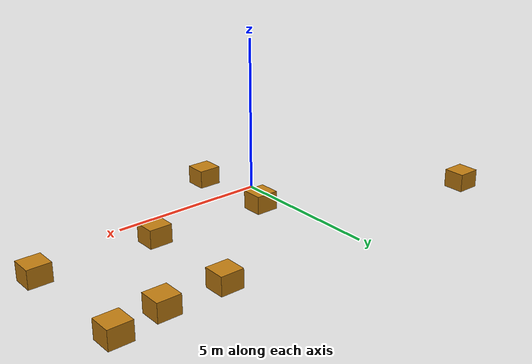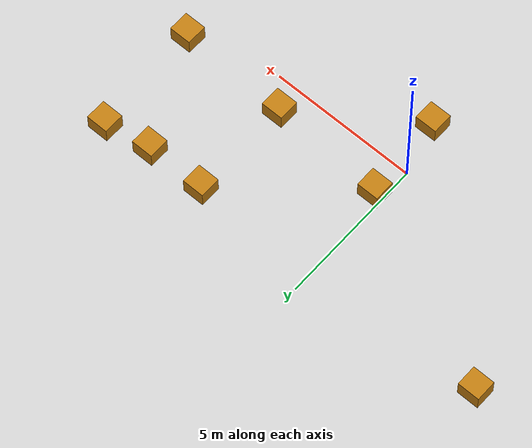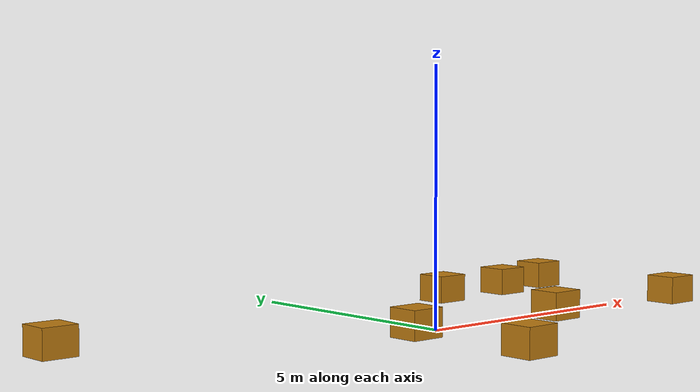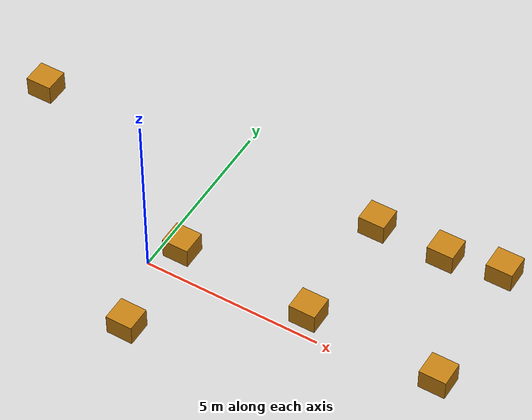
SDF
<?xml version='1.0'?>
<sdf version='1.7'>
  <model name='unit_box'>
    <link name='link_clone'>
      <inertial>
        <mass>710</mass>
        <inertia>
          <ixx>118.333</ixx>
          <ixy>0</ixy>
          <ixz>0</ixz>
          <iyy>118.333</iyy>
          <iyz>0</iyz>
          <izz>118.333</izz>
        </inertia>
        <pose>0 0 0 0 -0 0</pose>
      </inertial>
      <self_collide>0</self_collide>
      <enable_wind>0</enable_wind>
      <kinematic>0</kinematic>
      <pose>0.568983 -1.85759 1.8e-05 -1e-05 -0 0</pose>
      <gravity>1</gravity>
      <visual name='visual'>
        <geometry>
          <box>
            <size>0.75 0.7 0.6</size>
          </box>
        </geometry>
        <material>
          <script>
            <name>Gazebo/Grey</name>
            <uri>file://media/materials/scripts/gazebo.material</uri>
          </script>
          <shader type='vertex'>
            <normal_map>__default__</normal_map>
          </shader>
          <ambient>0.757 0.49 0.067 0.8</ambient>
          <diffuse>0.757 0.49 0.067 1</diffuse>
          <specular>0.01 0.01 0.01 1</specular>
          <emissive>0 0 0 1</emissive>
          <lighting>1</lighting>
        </material>
        <pose>0 0 0 0 -0 0</pose>
        <transparency>0</transparency>
        <cast_shadows>1</cast_shadows>
      </visual>
      <collision name='collision'>
        <laser_retro>0</laser_retro>
        <max_contacts>10</max_contacts>
        <pose>0 0 0 0 -0 0</pose>
        <geometry>
          <box>
            <size>1 1 1</size>
          </box>
        </geometry>
        <surface>
          <friction>
            <ode>
              <mu>1</mu>
              <mu2>1</mu2>
              <fdir1>0 0 0</fdir1>
              <slip1>0</slip1>
              <slip2>0</slip2>
            </ode>
            <torsional>
              <coefficient>1</coefficient>
              <patch_radius>0</patch_radius>
              <surface_radius>0</surface_radius>
              <use_patch_radius>1</use_patch_radius>
              <ode>
                <slip>0</slip>
              </ode>
            </torsional>
          </friction>
          <bounce>
            <restitution_coefficient>0</restitution_coefficient>
            <threshold>1e+06</threshold>
          </bounce>
          <contact>
            <collide_without_contact>0</collide_without_contact>
            <collide_without_contact_bitmask>1</collide_without_contact_bitmask>
            <collide_bitmask>1</collide_bitmask>
            <ode>
              <soft_cfm>0</soft_cfm>
              <soft_erp>0.2</soft_erp>
              <kp>1e+13</kp>
              <kd>1</kd>
              <max_vel>0.01</max_vel>
              <min_depth>0</min_depth>
            </ode>
            <bullet>
              <split_impulse>1</split_impulse>
              <split_impulse_penetration_threshold>-0.01</split_impulse_penetration_threshold>
              <soft_cfm>0</soft_cfm>
              <soft_erp>0.2</soft_erp>
              <kp>1e+13</kp>
              <kd>1</kd>
            </bullet>
          </contact>
        </surface>
      </collision>
    </link>
    <link name='link_clone_clone'>
      <inertial>
        <mass>710</mass>
        <inertia>
          <ixx>118.333</ixx>
          <ixy>0</ixy>
          <ixz>0</ixz>
          <iyy>118.333</iyy>
          <iyz>0</iyz>
          <izz>118.333</izz>
        </inertia>
        <pose>0 0 0 0 -0 0</pose>
      </inertial>
      <self_collide>0</self_collide>
      <enable_wind>0</enable_wind>
      <kinematic>0</kinematic>
      <pose>0.41169 0.977567 8e-06 -2e-05 0 0</pose>
      <gravity>1</gravity>
      <visual name='visual'>
        <geometry>
          <box>
            <size>0.75 0.7 0.6</size>
          </box>
        </geometry>
        <material>
          <script>
            <name>Gazebo/Grey</name>
            <uri>file://media/materials/scripts/gazebo.material</uri>
          </script>
          <shader type='vertex'>
            <normal_map>__default__</normal_map>
          </shader>
          <ambient>0.757 0.49 0.067 0.8</ambient>
          <diffuse>0.757 0.49 0.067 1</diffuse>
          <specular>0.01 0.01 0.01 1</specular>
          <emissive>0 0 0 1</emissive>
          <lighting>1</lighting>
        </material>
        <pose>0 0 0 0 -0 0</pose>
        <transparency>0</transparency>
        <cast_shadows>1</cast_shadows>
      </visual>
      <collision name='collision'>
        <laser_retro>0</laser_retro>
        <max_contacts>10</max_contacts>
        <pose>0 0 0 0 -0 0</pose>
        <geometry>
          <box>
            <size>1 1 1</size>
          </box>
        </geometry>
        <surface>
          <friction>
            <ode>
              <mu>1</mu>
              <mu2>1</mu2>
              <fdir1>0 0 0</fdir1>
              <slip1>0</slip1>
              <slip2>0</slip2>
            </ode>
            <torsional>
              <coefficient>1</coefficient>
              <patch_radius>0</patch_radius>
              <surface_radius>0</surface_radius>
              <use_patch_radius>1</use_patch_radius>
              <ode>
                <slip>0</slip>
              </ode>
            </torsional>
          </friction>
          <bounce>
            <restitution_coefficient>0</restitution_coefficient>
            <threshold>1e+06</threshold>
          </bounce>
          <contact>
            <collide_without_contact>0</collide_without_contact>
            <collide_without_contact_bitmask>1</collide_without_contact_bitmask>
            <collide_bitmask>1</collide_bitmask>
            <ode>
              <soft_cfm>0</soft_cfm>
              <soft_erp>0.2</soft_erp>
              <kp>1e+13</kp>
              <kd>1</kd>
              <max_vel>0.01</max_vel>
              <min_depth>0</min_depth>
            </ode>
            <bullet>
              <split_impulse>1</split_impulse>
              <split_impulse_penetration_threshold>-0.01</split_impulse_penetration_threshold>
              <soft_cfm>0</soft_cfm>
              <soft_erp>0.2</soft_erp>
              <kp>1e+13</kp>
              <kd>1</kd>
            </bullet>
          </contact>
        </surface>
      </collision>
    </link>
    <link name='link_clone_clone_0'>
      <inertial>
        <mass>710</mass>
        <inertia>
          <ixx>118.333</ixx>
          <ixy>0</ixy>
          <ixz>0</ixz>
          <iyy>118.333</iyy>
          <iyz>0</iyz>
          <izz>118.333</izz>
        </inertia>
        <pose>0 0 0 0 -0 0</pose>
      </inertial>
      <self_collide>0</self_collide>
      <enable_wind>0</enable_wind>
      <kinematic>0</kinematic>
      <pose>4.2893 0.798392 1e-05 -2e-05 0 0</pose>
      <gravity>1</gravity>
      <visual name='visual'>
        <geometry>
          <box>
            <size>0.75 0.7 0.6</size>
          </box>
        </geometry>
        <material>
          <script>
            <name>Gazebo/Grey</name>
            <uri>file://media/materials/scripts/gazebo.material</uri>
          </script>
          <shader type='vertex'>
            <normal_map>__default__</normal_map>
          </shader>
          <ambient>0.757 0.49 0.067 0.8</ambient>
          <diffuse>0.757 0.49 0.067 1</diffuse>
          <specular>0.01 0.01 0.01 1</specular>
          <emissive>0 0 0 1</emissive>
          <lighting>1</lighting>
        </material>
        <pose>0 0 0 0 -0 0</pose>
        <transparency>0</transparency>
        <cast_shadows>1</cast_shadows>
      </visual>
      <collision name='collision'>
        <laser_retro>0</laser_retro>
        <max_contacts>10</max_contacts>
        <pose>0 0 0 0 -0 0</pose>
        <geometry>
          <box>
            <size>1 1 1</size>
          </box>
        </geometry>
        <surface>
          <friction>
            <ode>
              <mu>1</mu>
              <mu2>1</mu2>
              <fdir1>0 0 0</fdir1>
              <slip1>0</slip1>
              <slip2>0</slip2>
            </ode>
            <torsional>
              <coefficient>1</coefficient>
              <patch_radius>0</patch_radius>
              <surface_radius>0</surface_radius>
              <use_patch_radius>1</use_patch_radius>
              <ode>
                <slip>0</slip>
              </ode>
            </torsional>
          </friction>
          <bounce>
            <restitution_coefficient>0</restitution_coefficient>
            <threshold>1e+06</threshold>
          </bounce>
          <contact>
            <collide_without_contact>0</collide_without_contact>
            <collide_without_contact_bitmask>1</collide_without_contact_bitmask>
            <collide_bitmask>1</collide_bitmask>
            <ode>
              <soft_cfm>0</soft_cfm>
              <soft_erp>0.2</soft_erp>
              <kp>1e+13</kp>
              <kd>1</kd>
              <max_vel>0.01</max_vel>
              <min_depth>0</min_depth>
            </ode>
            <bullet>
              <split_impulse>1</split_impulse>
              <split_impulse_penetration_threshold>-0.01</split_impulse_penetration_threshold>
              <soft_cfm>0</soft_cfm>
              <soft_erp>0.2</soft_erp>
              <kp>1e+13</kp>
              <kd>1</kd>
            </bullet>
          </contact>
        </surface>
      </collision>
    </link>
    <link name='link_clone_clone_1'>
      <inertial>
        <mass>710</mass>
        <inertia>
          <ixx>118.333</ixx>
          <ixy>0</ixy>
          <ixz>0</ixz>
          <iyy>118.333</iyy>
          <iyz>0</iyz>
          <izz>118.333</izz>
        </inertia>
        <pose>0 0 0 0 -0 0</pose>
      </inertial>
      <self_collide>0</self_collide>
      <enable_wind>0</enable_wind>
      <kinematic>0</kinematic>
      <pose>4.32605 4.25872 -2.4e-05 -2e-05 0 0</pose>
      <gravity>1</gravity>
      <visual name='visual'>
        <geometry>
          <box>
            <size>0.75 0.7 0.6</size>
          </box>
        </geometry>
        <material>
          <script>
            <name>Gazebo/Grey</name>
            <uri>file://media/materials/scripts/gazebo.material</uri>
          </script>
          <shader type='vertex'>
            <normal_map>__default__</normal_map>
          </shader>
          <ambient>0.757 0.49 0.067 0.8</ambient>
          <diffuse>0.757 0.49 0.067 1</diffuse>
          <specular>0.01 0.01 0.01 1</specular>
          <emissive>0 0 0 1</emissive>
          <lighting>1</lighting>
        </material>
        <pose>0 0 0 0 -0 0</pose>
        <transparency>0</transparency>
        <cast_shadows>1</cast_shadows>
      </visual>
      <collision name='collision'>
        <laser_retro>0</laser_retro>
        <max_contacts>10</max_contacts>
        <pose>0 0 0 0 -0 0</pose>
        <geometry>
          <box>
            <size>1 1 1</size>
          </box>
        </geometry>
        <surface>
          <friction>
            <ode>
              <mu>1</mu>
              <mu2>1</mu2>
              <fdir1>0 0 0</fdir1>
              <slip1>0</slip1>
              <slip2>0</slip2>
            </ode>
            <torsional>
              <coefficient>1</coefficient>
              <patch_radius>0</patch_radius>
              <surface_radius>0</surface_radius>
              <use_patch_radius>1</use_patch_radius>
              <ode>
                <slip>0</slip>
              </ode>
            </torsional>
          </friction>
          <bounce>
            <restitution_coefficient>0</restitution_coefficient>
            <threshold>1e+06</threshold>
          </bounce>
          <contact>
            <collide_without_contact>0</collide_without_contact>
            <collide_without_contact_bitmask>1</collide_without_contact_bitmask>
            <collide_bitmask>1</collide_bitmask>
            <ode>
              <soft_cfm>0</soft_cfm>
              <soft_erp>0.2</soft_erp>
              <kp>1e+13</kp>
              <kd>1</kd>
              <max_vel>0.01</max_vel>
              <min_depth>0</min_depth>
            </ode>
            <bullet>
              <split_impulse>1</split_impulse>
              <split_impulse_penetration_threshold>-0.01</split_impulse_penetration_threshold>
              <soft_cfm>0</soft_cfm>
              <soft_erp>0.2</soft_erp>
              <kp>1e+13</kp>
              <kd>1</kd>
            </bullet>
          </contact>
        </surface>
      </collision>
    </link>
    <link name='link_clone_clone_2'>
      <inertial>
        <mass>710</mass>
        <inertia>
          <ixx>118.333</ixx>
          <ixy>0</ixy>
          <ixz>0</ixz>
          <iyy>118.333</iyy>
          <iyz>0</iyz>
          <izz>118.333</izz>
        </inertia>
        <pose>0 0 0 0 -0 0</pose>
      </inertial>
      <self_collide>0</self_collide>
      <enable_wind>0</enable_wind>
      <kinematic>0</kinematic>
      <pose>7.88496 4.54043 -2.6e-05 -2e-05 0 0</pose>
      <gravity>1</gravity>
      <visual name='visual'>
        <geometry>
          <box>
            <size>0.75 0.7 0.6</size>
          </box>
        </geometry>
        <material>
          <script>
            <name>Gazebo/Grey</name>
            <uri>file://media/materials/scripts/gazebo.material</uri>
          </script>
          <shader type='vertex'>
            <normal_map>__default__</normal_map>
          </shader>
          <ambient>0.757 0.49 0.067 0.8</ambient>
          <diffuse>0.757 0.49 0.067 1</diffuse>
          <specular>0.01 0.01 0.01 1</specular>
          <emissive>0 0 0 1</emissive>
          <lighting>1</lighting>
        </material>
        <pose>0 0 0 0 -0 0</pose>
        <transparency>0</transparency>
        <cast_shadows>1</cast_shadows>
      </visual>
      <collision name='collision'>
        <laser_retro>0</laser_retro>
        <max_contacts>10</max_contacts>
        <pose>0 0 0 0 -0 0</pose>
        <geometry>
          <box>
            <size>1 1 1</size>
          </box>
        </geometry>
        <surface>
          <friction>
            <ode>
              <mu>1</mu>
              <mu2>1</mu2>
              <fdir1>0 0 0</fdir1>
              <slip1>0</slip1>
              <slip2>0</slip2>
            </ode>
            <torsional>
              <coefficient>1</coefficient>
              <patch_radius>0</patch_radius>
              <surface_radius>0</surface_radius>
              <use_patch_radius>1</use_patch_radius>
              <ode>
                <slip>0</slip>
              </ode>
            </torsional>
          </friction>
          <bounce>
            <restitution_coefficient>0</restitution_coefficient>
            <threshold>1e+06</threshold>
          </bounce>
          <contact>
            <collide_without_contact>0</collide_without_contact>
            <collide_without_contact_bitmask>1</collide_without_contact_bitmask>
            <collide_bitmask>1</collide_bitmask>
            <ode>
              <soft_cfm>0</soft_cfm>
              <soft_erp>0.2</soft_erp>
              <kp>1e+13</kp>
              <kd>1</kd>
              <max_vel>0.01</max_vel>
              <min_depth>0</min_depth>
            </ode>
            <bullet>
              <split_impulse>1</split_impulse>
              <split_impulse_penetration_threshold>-0.01</split_impulse_penetration_threshold>
              <soft_cfm>0</soft_cfm>
              <soft_erp>0.2</soft_erp>
              <kp>1e+13</kp>
              <kd>1</kd>
            </bullet>
          </contact>
        </surface>
      </collision>
    </link>
    <link name='link_clone_clone_3'>
      <inertial>
        <mass>710</mass>
        <inertia>
          <ixx>118.333</ixx>
          <ixy>0</ixy>
          <ixz>0</ixz>
          <iyy>118.333</iyy>
          <iyz>0</iyz>
          <izz>118.333</izz>
        </inertia>
        <pose>0 0 0 0 -0 0</pose>
      </inertial>
      <self_collide>0</self_collide>
      <enable_wind>0</enable_wind>
      <kinematic>0</kinematic>
      <pose>-5.90045 3.94865 -2.1e-05 -2e-05 0 0</pose>
      <gravity>1</gravity>
      <visual name='visual'>
        <geometry>
          <box>
            <size>0.75 0.7 0.6</size>
          </box>
        </geometry>
        <material>
          <script>
            <name>Gazebo/Grey</name>
            <uri>file://media/materials/scripts/gazebo.material</uri>
          </script>
          <shader type='vertex'>
            <normal_map>__default__</normal_map>
          </shader>
          <ambient>0.757 0.49 0.067 0.8</ambient>
          <diffuse>0.757 0.49 0.067 1</diffuse>
          <specular>0.01 0.01 0.01 1</specular>
          <emissive>0 0 0 1</emissive>
          <lighting>1</lighting>
        </material>
        <pose>0 0 0 0 -0 0</pose>
        <transparency>0</transparency>
        <cast_shadows>1</cast_shadows>
      </visual>
      <collision name='collision'>
        <laser_retro>0</laser_retro>
        <max_contacts>10</max_contacts>
        <pose>0 0 0 0 -0 0</pose>
        <geometry>
          <box>
            <size>1 1 1</size>
          </box>
        </geometry>
        <surface>
          <friction>
            <ode>
              <mu>1</mu>
              <mu2>1</mu2>
              <fdir1>0 0 0</fdir1>
              <slip1>0</slip1>
              <slip2>0</slip2>
            </ode>
            <torsional>
              <coefficient>1</coefficient>
              <patch_radius>0</patch_radius>
              <surface_radius>0</surface_radius>
              <use_patch_radius>1</use_patch_radius>
              <ode>
                <slip>0</slip>
              </ode>
            </torsional>
          </friction>
          <bounce>
            <restitution_coefficient>0</restitution_coefficient>
            <threshold>1e+06</threshold>
          </bounce>
          <contact>
            <collide_without_contact>0</collide_without_contact>
            <collide_without_contact_bitmask>1</collide_without_contact_bitmask>
            <collide_bitmask>1</collide_bitmask>
            <ode>
              <soft_cfm>0</soft_cfm>
              <soft_erp>0.2</soft_erp>
              <kp>1e+13</kp>
              <kd>1</kd>
              <max_vel>0.01</max_vel>
              <min_depth>0</min_depth>
            </ode>
            <bullet>
              <split_impulse>1</split_impulse>
              <split_impulse_penetration_threshold>-0.01</split_impulse_penetration_threshold>
              <soft_cfm>0</soft_cfm>
              <soft_erp>0.2</soft_erp>
              <kp>1e+13</kp>
              <kd>1</kd>
            </bullet>
          </contact>
        </surface>
      </collision>
    </link>
    <link name='link_clone_clone_4'>
      <inertial>
        <mass>710</mass>
        <inertia>
          <ixx>118.333</ixx>
          <ixy>0</ixy>
          <ixz>0</ixz>
          <iyy>118.333</iyy>
          <iyz>0</iyz>
          <izz>118.333</izz>
        </inertia>
        <pose>0 0 0 0 -0 0</pose>
      </inertial>
      <self_collide>0</self_collide>
      <enable_wind>0</enable_wind>
      <kinematic>0</kinematic>
      <pose>8.06252 0.676186 1.1e-05 -2e-05 0 0</pose>
      <gravity>1</gravity>
      <visual name='visual'>
        <geometry>
          <box>
            <size>0.75 0.7 0.6</size>
          </box>
        </geometry>
        <material>
          <script>
            <name>Gazebo/Grey</name>
            <uri>file://media/materials/scripts/gazebo.material</uri>
          </script>
          <shader type='vertex'>
            <normal_map>__default__</normal_map>
          </shader>
          <ambient>0.757 0.49 0.067 0.8</ambient>
          <diffuse>0.757 0.49 0.067 1</diffuse>
          <specular>0.01 0.01 0.01 1</specular>
          <emissive>0 0 0 1</emissive>
          <lighting>1</lighting>
        </material>
        <pose>0 0 0 0 -0 0</pose>
        <transparency>0</transparency>
        <cast_shadows>1</cast_shadows>
      </visual>
      <collision name='collision'>
        <laser_retro>0</laser_retro>
        <max_contacts>10</max_contacts>
        <pose>0 0 0 0 -0 0</pose>
        <geometry>
          <box>
            <size>1 1 1</size>
          </box>
        </geometry>
        <surface>
          <friction>
            <ode>
              <mu>1</mu>
              <mu2>1</mu2>
              <fdir1>0 0 0</fdir1>
              <slip1>0</slip1>
              <slip2>0</slip2>
            </ode>
            <torsional>
              <coefficient>1</coefficient>
              <patch_radius>0</patch_radius>
              <surface_radius>0</surface_radius>
              <use_patch_radius>1</use_patch_radius>
              <ode>
                <slip>0</slip>
              </ode>
            </torsional>
          </friction>
          <bounce>
            <restitution_coefficient>0</restitution_coefficient>
            <threshold>1e+06</threshold>
          </bounce>
          <contact>
            <collide_without_contact>0</collide_without_contact>
            <collide_without_contact_bitmask>1</collide_without_contact_bitmask>
            <collide_bitmask>1</collide_bitmask>
            <ode>
              <soft_cfm>0</soft_cfm>
              <soft_erp>0.2</soft_erp>
              <kp>1e+13</kp>
              <kd>1</kd>
              <max_vel>0.01</max_vel>
              <min_depth>0</min_depth>
            </ode>
            <bullet>
              <split_impulse>1</split_impulse>
              <split_impulse_penetration_threshold>-0.01</split_impulse_penetration_threshold>
              <soft_cfm>0</soft_cfm>
              <soft_erp>0.2</soft_erp>
              <kp>1e+13</kp>
              <kd>1</kd>
            </bullet>
          </contact>
        </surface>
      </collision>
    </link>
    <link name='link_clone_clone_5'>
      <inertial>
        <mass>710</mass>
        <inertia>
          <ixx>118.333</ixx>
          <ixy>0</ixy>
          <ixz>0</ixz>
          <iyy>118.333</iyy>
          <iyz>0</iyz>
          <izz>118.333</izz>
        </inertia>
        <pose>0 0 0 0 -0 0</pose>
      </inertial>
      <self_collide>0</self_collide>
      <enable_wind>0</enable_wind>
      <kinematic>0</kinematic>
      <pose>6.32602 4.2781 -2.4e-05 -2e-05 0 0</pose>
      <gravity>1</gravity>
      <visual name='visual'>
        <geometry>
          <box>
            <size>0.75 0.7 0.6</size>
          </box>
        </geometry>
        <material>
          <script>
            <name>Gazebo/Grey</name>
            <uri>file://media/materials/scripts/gazebo.material</uri>
          </script>
          <shader type='vertex'>
            <normal_map>__default__</normal_map>
          </shader>
          <ambient>0.757 0.49 0.067 0.8</ambient>
          <diffuse>0.757 0.49 0.067 1</diffuse>
          <specular>0.01 0.01 0.01 1</specular>
          <emissive>0 0 0 1</emissive>
          <lighting>1</lighting>
        </material>
        <pose>0 0 0 0 -0 0</pose>
        <transparency>0</transparency>
        <cast_shadows>1</cast_shadows>
      </visual>
      <collision name='collision'>
        <laser_retro>0</laser_retro>
        <max_contacts>10</max_contacts>
        <pose>0 0 0 0 -0 0</pose>
        <geometry>
          <box>
            <size>1 1 1</size>
          </box>
        </geometry>
        <surface>
          <friction>
            <ode>
              <mu>1</mu>
              <mu2>1</mu2>
              <fdir1>0 0 0</fdir1>
              <slip1>0</slip1>
              <slip2>0</slip2>
            </ode>
            <torsional>
              <coefficient>1</coefficient>
              <patch_radius>0</patch_radius>
              <surface_radius>0</surface_radius>
              <use_patch_radius>1</use_patch_radius>
              <ode>
                <slip>0</slip>
              </ode>
            </torsional>
          </friction>
          <bounce>
            <restitution_coefficient>0</restitution_coefficient>
            <threshold>1e+06</threshold>
          </bounce>
          <contact>
            <collide_without_contact>0</collide_without_contact>
            <collide_without_contact_bitmask>1</collide_without_contact_bitmask>
            <collide_bitmask>1</collide_bitmask>
            <ode>
              <soft_cfm>0</soft_cfm>
              <soft_erp>0.2</soft_erp>
              <kp>1e+13</kp>
              <kd>1</kd>
              <max_vel>0.01</max_vel>
              <min_depth>0</min_depth>
            </ode>
            <bullet>
              <split_impulse>1</split_impulse>
              <split_impulse_penetration_threshold>-0.01</split_impulse_penetration_threshold>
              <soft_cfm>0</soft_cfm>
              <soft_erp>0.2</soft_erp>
              <kp>1e+13</kp>
              <kd>1</kd>
            </bullet>
          </contact>
        </surface>
      </collision>
    </link>
    <static>0</static>
    <allow_auto_disable>1</allow_auto_disable>
  </model>
</sdf>
